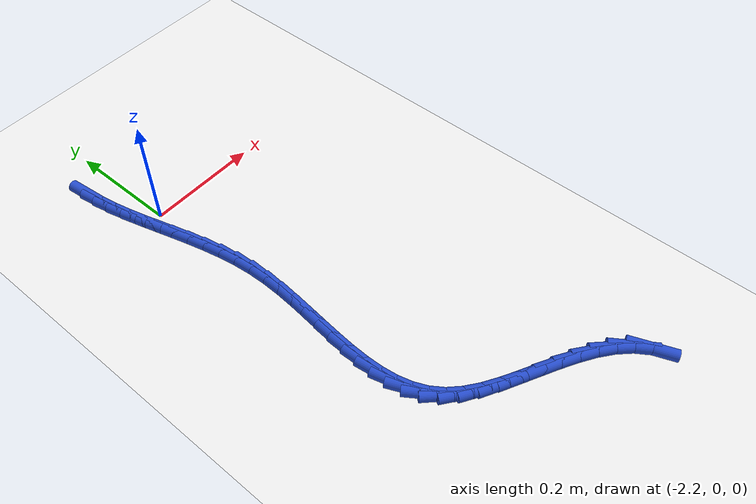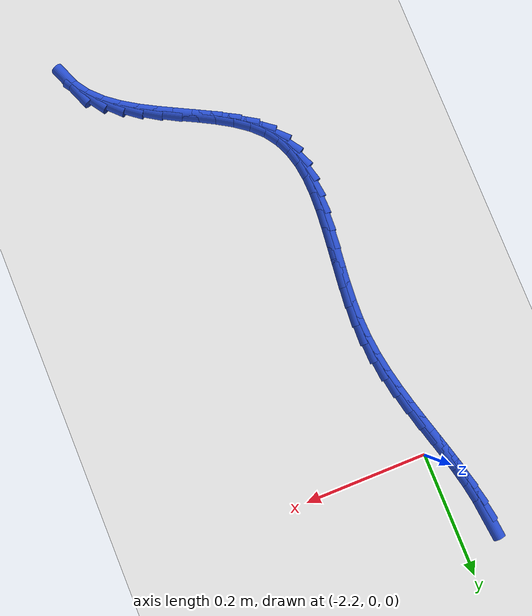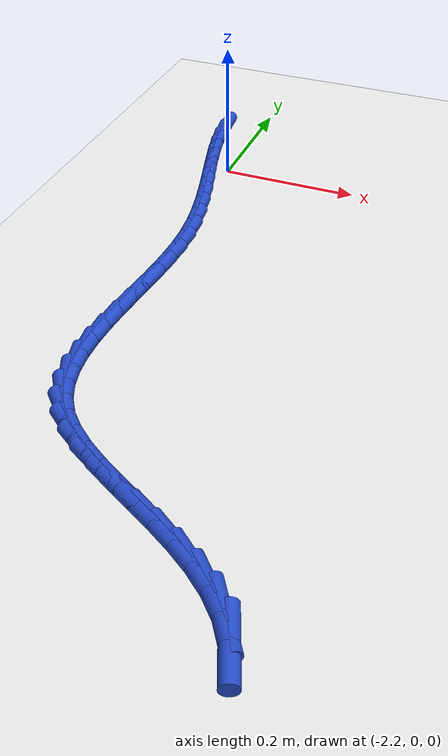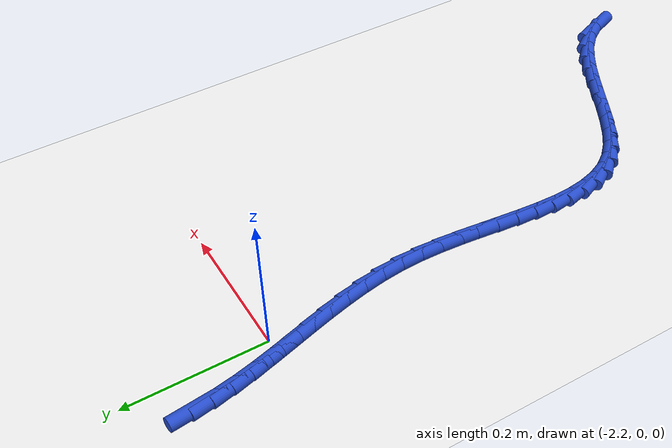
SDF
<sdf version="1.6">
 <world name="default">
  <model name="ground_plane">
   <static>1</static>
   <link name="link">
    <collision name="collision">
     <geometry><plane><normal>0 0 1</normal><size>100 100</size></plane></geometry>
     <surface><friction><ode><mu>100</mu><mu2>50</mu2></ode></friction></surface>
    </collision>
    <visual name="visual">
     <cast_shadows>0</cast_shadows>
     <geometry><plane><normal>0 0 1</normal><size>100 100</size></plane></geometry>
     <material>
      <script><uri>file://media/materials/scripts/gazebo.material</uri><name>Gazebo/WhiteGlow</name></script>
     </material>
    </visual>
   </link>
  </model>
  <model name="line">
   <link name="link_153">
    <pose>-2.252501120346864 0.12001203984932977 0.01 0 1.57 -1.4616472312193087</pose>
    <collision name="collision">
     <geometry><cylinder><radius>0.01</radius><length>0.08</length></cylinder></geometry>
    </collision>
    <visual name="visual">
     <material>
      <script><name>Gazebo/Blue</name><uri>file://media/materials/scripts/gazebo.material</uri></script>
     </material>
     <geometry><cylinder><radius>0.01</radius><length>0.08</length></cylinder></geometry>
    </visual>
   </link>
   <link name="link_154">
    <pose>-2.2494726432966137 0.09237607219315677 0.01 0 1.57 -1.39548977991264</pose>
    <collision name="collision">
     <geometry><cylinder><radius>0.01</radius><length>0.08</length></cylinder></geometry>
    </collision>
    <visual name="visual">
     <material>
      <script><name>Gazebo/Blue</name><uri>file://media/materials/scripts/gazebo.material</uri></script>
     </material>
     <geometry><cylinder><radius>0.01</radius><length>0.08</length></cylinder></geometry>
    </visual>
   </link>
   <link name="link_155">
    <pose>-2.2445166786205744 0.06439599443127986 0.01 0 1.57 -1.3465372255806625</pose>
    <collision name="collision">
     <geometry><cylinder><radius>0.01</radius><length>0.08</length></cylinder></geometry>
    </collision>
    <visual name="visual">
     <material>
      <script><name>Gazebo/Blue</name><uri>file://media/materials/scripts/gazebo.material</uri></script>
     </material>
     <geometry><cylinder><radius>0.01</radius><length>0.08</length></cylinder></geometry>
    </visual>
   </link>
   <link name="link_156">
    <pose>-2.2380552562772538 0.036068324382219644 0.01 0 1.57 -1.3135439646274478</pose>
    <collision name="collision">
     <geometry><cylinder><radius>0.01</radius><length>0.08</length></cylinder></geometry>
    </collision>
    <visual name="visual">
     <material>
      <script><name>Gazebo/Blue</name><uri>file://media/materials/scripts/gazebo.material</uri></script>
     </material>
     <geometry><cylinder><radius>0.01</radius><length>0.08</length></cylinder></geometry>
    </visual>
   </link>
   <link name="link_157">
    <pose>-2.2305104062251577 0.007389579864496704 0.01 0 1.57 -1.295332445236846</pose>
    <collision name="collision">
     <geometry><cylinder><radius>0.01</radius><length>0.08</length></cylinder></geometry>
    </collision>
    <visual name="visual">
     <material>
      <script><name>Gazebo/Blue</name><uri>file://media/materials/scripts/gazebo.material</uri></script>
     </material>
     <geometry><cylinder><radius>0.01</radius><length>0.08</length></cylinder></geometry>
    </visual>
   </link>
   <link name="link_158">
    <pose>-2.222304158422792 -0.021643721303368328 0.01 0 1.57 -1.290984616497342</pose>
    <collision name="collision">
     <geometry><cylinder><radius>0.01</radius><length>0.08</length></cylinder></geometry>
    </collision>
    <visual name="visual">
     <material>
      <script><name>Gazebo/Blue</name><uri>file://media/materials/scripts/gazebo.material</uri></script>
     </material>
     <geometry><cylinder><radius>0.01</radius><length>0.08</length></cylinder></geometry>
    </visual>
   </link>
   <link name="link_159">
    <pose>-2.213858542828664 -0.05103506130285476 0.01 0 1.57 -1.2999034636140847</pose>
    <collision name="collision">
     <geometry><cylinder><radius>0.01</radius><length>0.08</length></cylinder></geometry>
    </collision>
    <visual name="visual">
     <material>
      <script><name>Gazebo/Blue</name><uri>file://media/materials/scripts/gazebo.material</uri></script>
     </material>
     <geometry><cylinder><radius>0.01</radius><length>0.08</length></cylinder></geometry>
    </visual>
   </link>
   <link name="link_160">
    <pose>-2.2055955894012795 -0.080787922315442 0.01 0 1.57 -1.3217969085094112</pose>
    <collision name="collision">
     <geometry><cylinder><radius>0.01</radius><length>0.08</length></cylinder></geometry>
    </collision>
    <visual name="visual">
     <material>
      <script><name>Gazebo/Blue</name><uri>file://media/materials/scripts/gazebo.material</uri></script>
     </material>
     <geometry><cylinder><radius>0.01</radius><length>0.08</length></cylinder></geometry>
    </visual>
   </link>
   <link name="link_161">
    <pose>-2.197937328099145 -0.11090578652260942 0.01 0 1.57 -1.3566081088062607</pose>
    <collision name="collision">
     <geometry><cylinder><radius>0.01</radius><length>0.08</length></cylinder></geometry>
    </collision>
    <visual name="visual">
     <material>
      <script><name>Gazebo/Blue</name><uri>file://media/materials/scripts/gazebo.material</uri></script>
     </material>
     <geometry><cylinder><radius>0.01</radius><length>0.08</length></cylinder></geometry>
    </visual>
   </link>
   <link name="link_162">
    <pose>-2.191305788880767 -0.1413921361058364 0.01 0 1.57 -1.4043950753152665</pose>
    <collision name="collision">
     <geometry><cylinder><radius>0.01</radius><length>0.08</length></cylinder></geometry>
    </collision>
    <visual name="visual">
     <material>
      <script><name>Gazebo/Blue</name><uri>file://media/materials/scripts/gazebo.material</uri></script>
     </material>
     <geometry><cylinder><radius>0.01</radius><length>0.08</length></cylinder></geometry>
    </visual>
   </link>
   <link name="link_163">
    <pose>-2.1861230017046522 -0.17225045324660232 0.01 0 1.57 -1.4651518644870714</pose>
    <collision name="collision">
     <geometry><cylinder><radius>0.01</radius><length>0.08</length></cylinder></geometry>
    </collision>
    <visual name="visual">
     <material>
      <script><name>Gazebo/Blue</name><uri>file://media/materials/scripts/gazebo.material</uri></script>
     </material>
     <geometry><cylinder><radius>0.01</radius><length>0.08</length></cylinder></geometry>
    </visual>
   </link>
   <link name="link_164">
    <pose>-2.182810996529306 -0.20348422012638656 0.01 0 1.57 -1.5362537105914547</pose>
    <collision name="collision">
     <geometry><cylinder><radius>0.01</radius><length>0.08</length></cylinder></geometry>
    </collision>
    <visual name="visual">
     <material>
      <script><name>Gazebo/Blue</name><uri>file://media/materials/scripts/gazebo.material</uri></script>
     </material>
     <geometry><cylinder><radius>0.01</radius><length>0.08</length></cylinder></geometry>
    </visual>
   </link>
   <link name="link_165">
    <pose>-2.1817191130770155 -0.2350813966592382 0.01 0 1.57 1.5433754330970024</pose>
    <collision name="collision">
     <geometry><cylinder><radius>0.01</radius><length>0.08</length></cylinder></geometry>
    </collision>
    <visual name="visual">
     <material>
      <script><name>Gazebo/Blue</name><uri>file://media/materials/scripts/gazebo.material</uri></script>
     </material>
     <geometry><cylinder><radius>0.01</radius><length>0.08</length></cylinder></geometry>
    </visual>
   </link>
   <link name="link_166">
    <pose>-2.1825918478799995 -0.26690078459109723 0.01 0 1.57 1.4992447505718782</pose>
    <collision name="collision">
     <geometry><cylinder><radius>0.01</radius><length>0.08</length></cylinder></geometry>
    </collision>
    <visual name="visual">
     <material>
      <script><name>Gazebo/Blue</name><uri>file://media/materials/scripts/gazebo.material</uri></script>
     </material>
     <geometry><cylinder><radius>0.01</radius><length>0.08</length></cylinder></geometry>
    </visual>
   </link>
   <link name="link_167">
    <pose>-2.1848736832862965 -0.29873712066217706 0.01 0 1.57 1.472113125194891</pose>
    <collision name="collision">
     <geometry><cylinder><radius>0.01</radius><length>0.08</length></cylinder></geometry>
    </collision>
    <visual name="visual">
     <material>
      <script><name>Gazebo/Blue</name><uri>file://media/materials/scripts/gazebo.material</uri></script>
     </material>
     <geometry><cylinder><radius>0.01</radius><length>0.08</length></cylinder></geometry>
    </visual>
   </link>
   <link name="link_168">
    <pose>-2.1880069434003553 -0.33038468074152133 0.01 0 1.57 1.4615791224346941</pose>
    <collision name="collision">
     <geometry><cylinder><radius>0.01</radius><length>0.08</length></cylinder></geometry>
    </collision>
    <visual name="visual">
     <material>
      <script><name>Gazebo/Blue</name><uri>file://media/materials/scripts/gazebo.material</uri></script>
     </material>
     <geometry><cylinder><radius>0.01</radius><length>0.08</length></cylinder></geometry>
    </visual>
   </link>
   <link name="link_169">
    <pose>-2.1914339523266264 -0.361637740698173 0.01 0 1.57 1.4679697585443898</pose>
    <collision name="collision">
     <geometry><cylinder><radius>0.01</radius><length>0.08</length></cylinder></geometry>
    </collision>
    <visual name="visual">
     <material>
      <script><name>Gazebo/Blue</name><uri>file://media/materials/scripts/gazebo.material</uri></script>
     </material>
     <geometry><cylinder><radius>0.01</radius><length>0.08</length></cylinder></geometry>
    </visual>
   </link>
   <link name="link_170">
    <pose>-2.1945970341695578 -0.3922905764011778 0.01 0 1.57 1.4925069872843226</pose>
    <collision name="collision">
     <geometry><cylinder><radius>0.01</radius><length>0.08</length></cylinder></geometry>
    </collision>
    <visual name="visual">
     <material>
      <script><name>Gazebo/Blue</name><uri>file://media/materials/scripts/gazebo.material</uri></script>
     </material>
     <geometry><cylinder><radius>0.01</radius><length>0.08</length></cylinder></geometry>
    </visual>
   </link>
   <link name="link_171">
    <pose>-2.1969385130335994 -0.42213746371957866 0.01 0 1.57 1.5374397833156743</pose>
    <collision name="collision">
     <geometry><cylinder><radius>0.01</radius><length>0.08</length></cylinder></geometry>
    </collision>
    <visual name="visual">
     <material>
      <script><name>Gazebo/Blue</name><uri>file://media/materials/scripts/gazebo.material</uri></script>
     </material>
     <geometry><cylinder><radius>0.01</radius><length>0.08</length></cylinder></geometry>
    </visual>
   </link>
   <link name="link_172">
    <pose>-2.197900713023201 -0.45097267852241935 0.01 0 1.57 -1.5355165545914404</pose>
    <collision name="collision">
     <geometry><cylinder><radius>0.01</radius><length>0.08</length></cylinder></geometry>
    </collision>
    <visual name="visual">
     <material>
      <script><name>Gazebo/Blue</name><uri>file://media/materials/scripts/gazebo.material</uri></script>
     </material>
     <geometry><cylinder><radius>0.01</radius><length>0.08</length></cylinder></geometry>
    </visual>
   </link>
   <link name="link_173">
    <pose>-2.1969259582428107 -0.47859049667874365 0.01 0 1.57 -1.4391166337677983</pose>
    <collision name="collision">
     <geometry><cylinder><radius>0.01</radius><length>0.08</length></cylinder></geometry>
    </collision>
    <visual name="visual">
     <material>
      <script><name>Gazebo/Blue</name><uri>file://media/materials/scripts/gazebo.material</uri></script>
     </material>
     <geometry><cylinder><radius>0.01</radius><length>0.08</length></cylinder></geometry>
    </visual>
   </link>
   <link name="link_174">
    <pose>-2.1934565727968782 -0.5047851940575953 0.01 0 1.57 -1.311304066430133</pose>
    <collision name="collision">
     <geometry><cylinder><radius>0.01</radius><length>0.08</length></cylinder></geometry>
    </collision>
    <visual name="visual">
     <material>
      <script><name>Gazebo/Blue</name><uri>file://media/materials/scripts/gazebo.material</uri></script>
     </material>
     <geometry><cylinder><radius>0.01</radius><length>0.08</length></cylinder></geometry>
    </visual>
   </link>
   <link name="link_175">
    <pose>-2.1869348807898525 -0.5293510465280183 0.01 0 1.57 -1.1515115010766608</pose>
    <collision name="collision">
     <geometry><cylinder><radius>0.01</radius><length>0.08</length></cylinder></geometry>
    </collision>
    <visual name="visual">
     <material>
      <script><name>Gazebo/Blue</name><uri>file://media/materials/scripts/gazebo.material</uri></script>
     </material>
     <geometry><cylinder><radius>0.01</radius><length>0.08</length></cylinder></geometry>
    </visual>
   </link>
   <link name="link_176">
    <pose>-2.1768032063261837 -0.5520823299590564 0.01 0 1.57 -0.9660760796400881</pose>
    <collision name="collision">
     <geometry><cylinder><radius>0.01</radius><length>0.08</length></cylinder></geometry>
    </collision>
    <visual name="visual">
     <material>
      <script><name>Gazebo/Blue</name><uri>file://media/materials/scripts/gazebo.material</uri></script>
     </material>
     <geometry><cylinder><radius>0.01</radius><length>0.08</length></cylinder></geometry>
    </visual>
   </link>
   <link name="link_177">
    <pose>-2.162503888950574 -0.5727733274337659 0.01 0 1.57 -0.7806684696673455</pose>
    <collision name="collision">
     <geometry><cylinder><radius>0.01</radius><length>0.08</length></cylinder></geometry>
    </collision>
    <visual name="visual">
     <material>
      <script><name>Gazebo/Blue</name><uri>file://media/materials/scripts/gazebo.material</uri></script>
     </material>
     <geometry><cylinder><radius>0.01</radius><length>0.08</length></cylinder></geometry>
    </visual>
   </link>
   <link name="link_178">
    <pose>-2.143754003429461 -0.5913466841338395 0.01 0 1.57 -0.6421657303936711</pose>
    <collision name="collision">
     <geometry><cylinder><radius>0.01</radius><length>0.08</length></cylinder></geometry>
    </collision>
    <visual name="visual">
     <material>
      <script><name>Gazebo/Blue</name><uri>file://media/materials/scripts/gazebo.material</uri></script>
     </material>
     <geometry><cylinder><radius>0.01</radius><length>0.08</length></cylinder></geometry>
    </visual>
   </link>
   <link name="link_179">
    <pose>-2.1212460072480135 -0.6081807646494947 0.01 0 1.57 -0.5507898651905326</pose>
    <collision name="collision">
     <geometry><cylinder><radius>0.01</radius><length>0.08</length></cylinder></geometry>
    </collision>
    <visual name="visual">
     <material>
      <script><name>Gazebo/Blue</name><uri>file://media/materials/scripts/gazebo.material</uri></script>
     </material>
     <geometry><cylinder><radius>0.01</radius><length>0.08</length></cylinder></geometry>
    </visual>
   </link>
   <link name="link_180">
    <pose>-2.0958887182748644 -0.623755021712133 0.01 0 1.57 -0.49663791406823543</pose>
    <collision name="collision">
     <geometry><cylinder><radius>0.01</radius><length>0.08</length></cylinder></geometry>
    </collision>
    <visual name="visual">
     <material>
      <script><name>Gazebo/Blue</name><uri>file://media/materials/scripts/gazebo.material</uri></script>
     </material>
     <geometry><cylinder><radius>0.01</radius><length>0.08</length></cylinder></geometry>
    </visual>
   </link>
   <link name="link_181">
    <pose>-2.0685909543786454 -0.6385489080531562 0.01 0 1.57 -0.4728743190216231</pose>
    <collision name="collision">
     <geometry><cylinder><radius>0.01</radius><length>0.08</length></cylinder></geometry>
    </collision>
    <visual name="visual">
     <material>
      <script><name>Gazebo/Blue</name><uri>file://media/materials/scripts/gazebo.material</uri></script>
     </material>
     <geometry><cylinder><radius>0.01</radius><length>0.08</length></cylinder></geometry>
    </visual>
   </link>
   <link name="link_182">
    <pose>-2.040261533427989 -0.6530418764039662 0.01 0 1.57 -0.4760917212339847</pose>
    <collision name="collision">
     <geometry><cylinder><radius>0.01</radius><length>0.08</length></cylinder></geometry>
    </collision>
    <visual name="visual">
     <material>
      <script><name>Gazebo/Blue</name><uri>file://media/materials/scripts/gazebo.material</uri></script>
     </material>
     <geometry><cylinder><radius>0.01</radius><length>0.08</length></cylinder></geometry>
    </visual>
   </link>
   <link name="link_183">
    <pose>-2.011809273291527 -0.6677133794959644 0.01 0 1.57 -0.5059746020676353</pose>
    <collision name="collision">
     <geometry><cylinder><radius>0.01</radius><length>0.08</length></cylinder></geometry>
    </collision>
    <visual name="visual">
     <material>
      <script><name>Gazebo/Blue</name><uri>file://media/materials/scripts/gazebo.material</uri></script>
     </material>
     <geometry><cylinder><radius>0.01</radius><length>0.08</length></cylinder></geometry>
    </visual>
   </link>
   <link name="link_184">
    <pose>-1.9841429918378921 -0.6830428700605521 0.01 0 1.57 -0.5650727835021027</pose>
    <collision name="collision">
     <geometry><cylinder><radius>0.01</radius><length>0.08</length></cylinder></geometry>
    </collision>
    <visual name="visual">
     <material>
      <script><name>Gazebo/Blue</name><uri>file://media/materials/scripts/gazebo.material</uri></script>
     </material>
     <geometry><cylinder><radius>0.01</radius><length>0.08</length></cylinder></geometry>
    </visual>
   </link>
   <link name="link_185">
    <pose>-1.9581715069357146 -0.6995098008291318 0.01 0 1.57 -0.6586071811354823</pose>
    <collision name="collision">
     <geometry><cylinder><radius>0.01</radius><length>0.08</length></cylinder></geometry>
    </collision>
    <visual name="visual">
     <material>
      <script><name>Gazebo/Blue</name><uri>file://media/materials/scripts/gazebo.material</uri></script>
     </material>
     <geometry><cylinder><radius>0.01</radius><length>0.08</length></cylinder></geometry>
    </visual>
   </link>
   <link name="link_186">
    <pose>-1.934803636453628 -0.717593624533105 0.01 0 1.57 -0.7935090445896044</pose>
    <collision name="collision">
     <geometry><cylinder><radius>0.01</radius><length>0.08</length></cylinder></geometry>
    </collision>
    <visual name="visual">
     <material>
      <script><name>Gazebo/Blue</name><uri>file://media/materials/scripts/gazebo.material</uri></script>
     </material>
     <geometry><cylinder><radius>0.01</radius><length>0.08</length></cylinder></geometry>
    </visual>
   </link>
   <link name="link_187">
    <pose>-1.9149481982602639 -0.7377737939038733 0.01 0 1.57 -0.9748187234441232</pose>
    <collision name="collision">
     <geometry><cylinder><radius>0.01</radius><length>0.08</length></cylinder></geometry>
    </collision>
    <visual name="visual">
     <material>
      <script><name>Gazebo/Blue</name><uri>file://media/materials/scripts/gazebo.material</uri></script>
     </material>
     <geometry><cylinder><radius>0.01</radius><length>0.08</length></cylinder></geometry>
    </visual>
   </link>
   <link name="link_188">
    <pose>-1.8995140102242545 -0.7605297616728384 0.01 0 1.57 -1.1976716041006514</pose>
    <collision name="collision">
     <geometry><cylinder><radius>0.01</radius><length>0.08</length></cylinder></geometry>
    </collision>
    <visual name="visual">
     <material>
      <script><name>Gazebo/Blue</name><uri>file://media/materials/scripts/gazebo.material</uri></script>
     </material>
     <geometry><cylinder><radius>0.01</radius><length>0.08</length></cylinder></geometry>
    </visual>
   </link>
  </model>
 </world>
</sdf>
